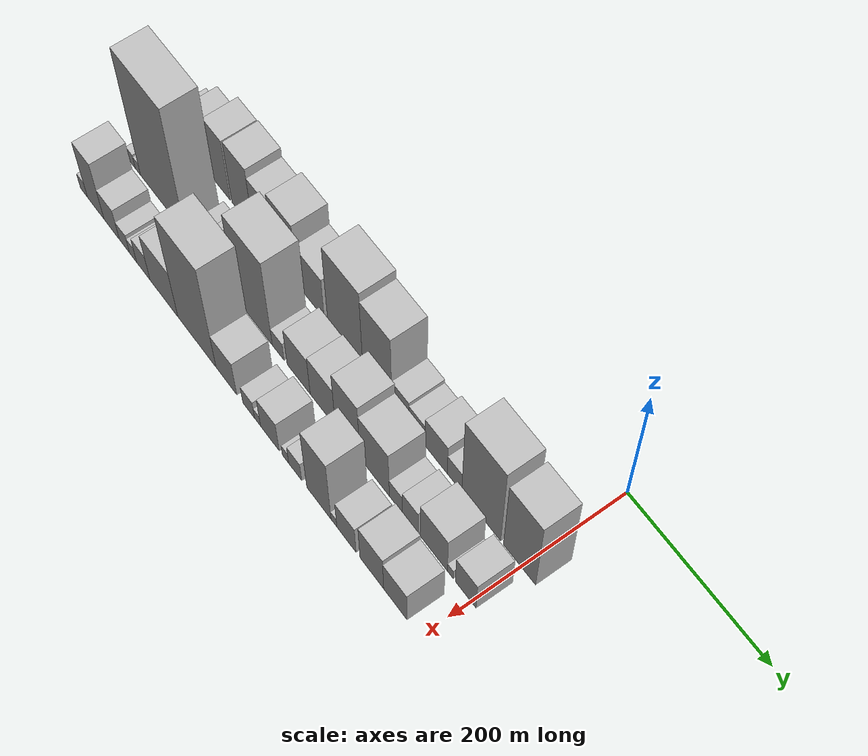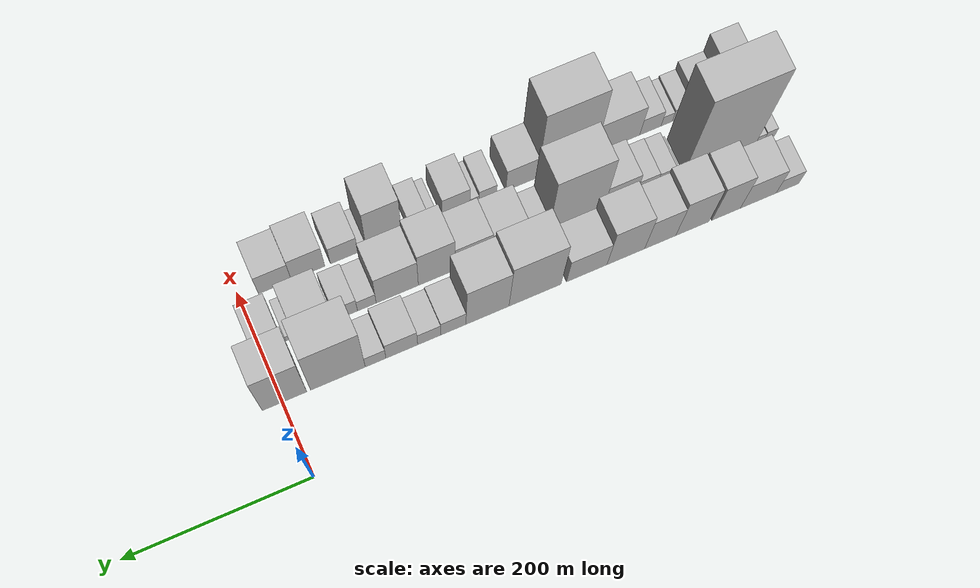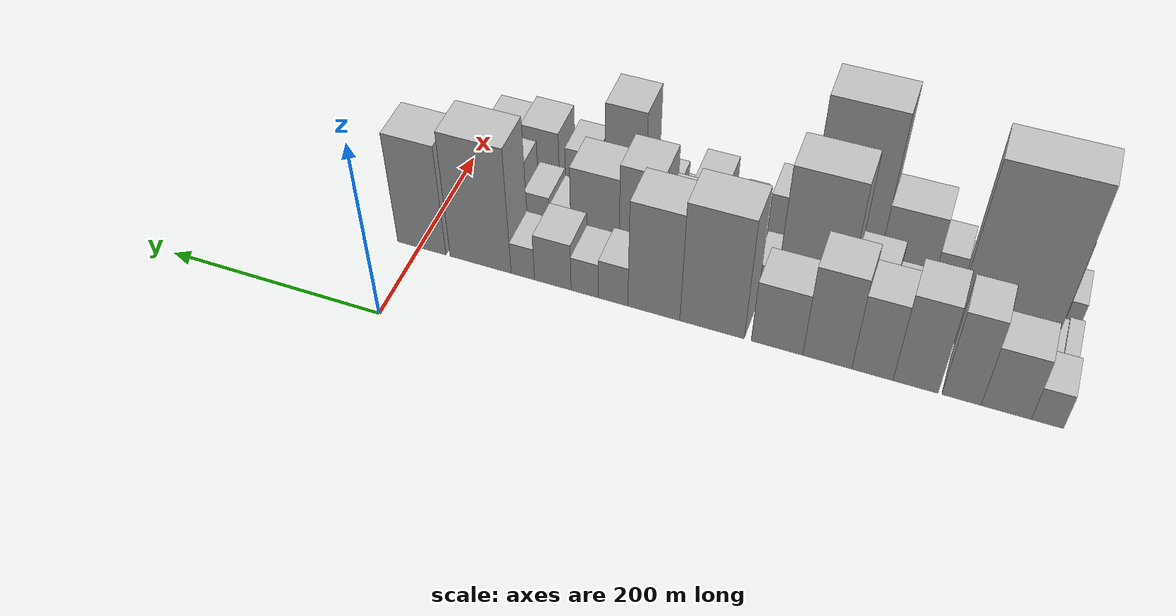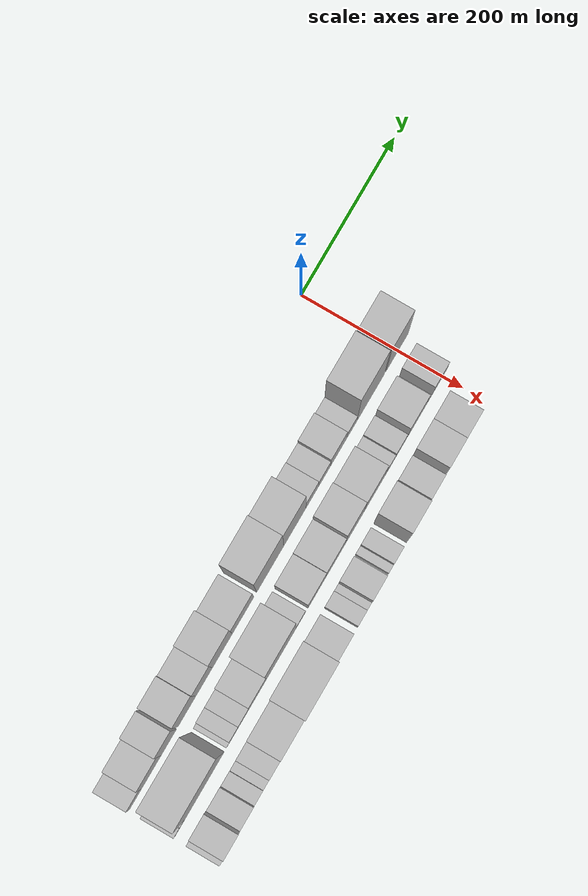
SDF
<sdf version="1.6">
 <world name="default">
  <model name="building_1">
   <static>1</static>
   <pose>100.0000 -547.4474 0 0.000000 0.000000 0.000000</pose>
   <link name="link">
    <pose>0 0 21.00 0 0 0</pose>
    <collision name="collision"><geometry><box><size>40.0000 25.1052 42.0000</size></box></geometry></collision>
    <visual name="visual">
     <cast_shadows>0</cast_shadows>
     <geometry><box><size>40.0000 25.1052 42.0000</size></box></geometry>
     <material>
      <script>
       <uri>model://HANNAS_wall/materials/scripts</uri>
       <uri>model://HANNAS_wall/materials/textures</uri>
       <name>vrc/HANNAS_wall</name>
      </script>
     </material>
    </visual>
   </link>
  </model>
  <model name="building_2">
   <static>1</static>
   <pose>100.0000 -514.9876 0 0.000000 0.000000 0.000000</pose>
   <link name="link">
    <pose>0 0 37.50 0 0 0</pose>
    <collision name="collision"><geometry><box><size>40.0000 39.8145 75.0000</size></box></geometry></collision>
    <visual name="visual">
     <cast_shadows>0</cast_shadows>
     <geometry><box><size>40.0000 39.8145 75.0000</size></box></geometry>
     <material>
      <script>
       <uri>model://HANNAS_wall/materials/scripts</uri>
       <uri>model://HANNAS_wall/materials/textures</uri>
       <name>vrc/HANNAS_wall</name>
      </script>
     </material>
    </visual>
   </link>
  </model>
  <model name="building_3">
   <static>1</static>
   <pose>100.0000 -479.2793 0 0.000000 0.000000 0.000000</pose>
   <link name="link">
    <pose>0 0 52.50 0 0 0</pose>
    <collision name="collision"><geometry><box><size>40.0000 31.6019 105.0000</size></box></geometry></collision>
    <visual name="visual">
     <cast_shadows>0</cast_shadows>
     <geometry><box><size>40.0000 31.6019 105.0000</size></box></geometry>
     <material>
      <script>
       <uri>model://HANNAS_wall/materials/scripts</uri>
       <uri>model://HANNAS_wall/materials/textures</uri>
       <name>vrc/HANNAS_wall</name>
      </script>
     </material>
    </visual>
   </link>
  </model>
  <model name="building_4">
   <static>1</static>
   <pose>100.0000 -442.0592 0 0.000000 0.000000 0.000000</pose>
   <link name="link">
    <pose>0 0 54.00 0 0 0</pose>
    <collision name="collision"><geometry><box><size>40.0000 36.8384 108.0000</size></box></geometry></collision>
    <visual name="visual">
     <cast_shadows>0</cast_shadows>
     <geometry><box><size>40.0000 36.8384 108.0000</size></box></geometry>
     <material>
      <script>
       <uri>model://HANNAS_wall/materials/scripts</uri>
       <uri>model://HANNAS_wall/materials/textures</uri>
       <name>vrc/HANNAS_wall</name>
      </script>
     </material>
    </visual>
   </link>
  </model>
  <model name="building_5">
   <static>1</static>
   <pose>100.0000 -406.5390 0 0.000000 0.000000 0.000000</pose>
   <link name="link">
    <pose>0 0 46.50 0 0 0</pose>
    <collision name="collision"><geometry><box><size>40.0000 34.2020 93.0000</size></box></geometry></collision>
    <visual name="visual">
     <cast_shadows>0</cast_shadows>
     <geometry><box><size>40.0000 34.2020 93.0000</size></box></geometry>
     <material>
      <script>
       <uri>model://HANNAS_wall/materials/scripts</uri>
       <uri>model://HANNAS_wall/materials/textures</uri>
       <name>vrc/HANNAS_wall</name>
      </script>
     </material>
    </visual>
   </link>
  </model>
  <model name="building_6">
   <static>1</static>
   <pose>100.0000 -368.8271 0 0.000000 0.000000 0.000000</pose>
   <link name="link">
    <pose>0 0 55.50 0 0 0</pose>
    <collision name="collision"><geometry><box><size>40.0000 41.2217 111.0000</size></box></geometry></collision>
    <visual name="visual">
     <cast_shadows>0</cast_shadows>
     <geometry><box><size>40.0000 41.2217 111.0000</size></box></geometry>
     <material>
      <script>
       <uri>model://HANNAS_wall/materials/scripts</uri>
       <uri>model://HANNAS_wall/materials/textures</uri>
       <name>vrc/HANNAS_wall</name>
      </script>
     </material>
    </visual>
   </link>
  </model>
  <model name="building_7">
   <static>1</static>
   <pose>100.0000 -326.1968 0 0.000000 0.000000 0.000000</pose>
   <link name="link">
    <pose>0 0 37.50 0 0 0</pose>
    <collision name="collision"><geometry><box><size>40.0000 44.0390 75.0000</size></box></geometry></collision>
    <visual name="visual">
     <cast_shadows>0</cast_shadows>
     <geometry><box><size>40.0000 44.0390 75.0000</size></box></geometry>
     <material>
      <script>
       <uri>model://HANNAS_wall/materials/scripts</uri>
       <uri>model://HANNAS_wall/materials/textures</uri>
       <name>vrc/HANNAS_wall</name>
      </script>
     </material>
    </visual>
   </link>
  </model>
  <model name="building_8">
   <static>1</static>
   <pose>100.0000 -269.9359 0 0.000000 0.000000 0.000000</pose>
   <link name="link">
    <pose>0 0 72.00 0 0 0</pose>
    <collision name="collision"><geometry><box><size>40.0000 56.4827 144.0000</size></box></geometry></collision>
    <visual name="visual">
     <cast_shadows>0</cast_shadows>
     <geometry><box><size>40.0000 56.4827 144.0000</size></box></geometry>
     <material>
      <script>
       <uri>model://HANNAS_wall/materials/scripts</uri>
       <uri>model://HANNAS_wall/materials/textures</uri>
       <name>vrc/HANNAS_wall</name>
      </script>
     </material>
    </visual>
   </link>
  </model>
  <model name="building_9">
   <static>1</static>
   <pose>100.0000 -218.4961 0 0.000000 0.000000 0.000000</pose>
   <link name="link">
    <pose>0 0 64.50 0 0 0</pose>
    <collision name="collision"><geometry><box><size>40.0000 46.3969 129.0000</size></box></geometry></collision>
    <visual name="visual">
     <cast_shadows>0</cast_shadows>
     <geometry><box><size>40.0000 46.3969 129.0000</size></box></geometry>
     <material>
      <script>
       <uri>model://HANNAS_wall/materials/scripts</uri>
       <uri>model://HANNAS_wall/materials/textures</uri>
       <name>vrc/HANNAS_wall</name>
      </script>
     </material>
    </visual>
   </link>
  </model>
  <model name="building_10">
   <static>1</static>
   <pose>100.0000 -181.8941 0 0.000000 0.000000 0.000000</pose>
   <link name="link">
    <pose>0 0 24.00 0 0 0</pose>
    <collision name="collision"><geometry><box><size>40.0000 26.8072 48.0000</size></box></geometry></collision>
    <visual name="visual">
     <cast_shadows>0</cast_shadows>
     <geometry><box><size>40.0000 26.8072 48.0000</size></box></geometry>
     <material>
      <script>
       <uri>model://HANNAS_wall/materials/scripts</uri>
       <uri>model://HANNAS_wall/materials/textures</uri>
       <name>vrc/HANNAS_wall</name>
      </script>
     </material>
    </visual>
   </link>
  </model>
  <model name="building_11">
   <static>1</static>
   <pose>100.0000 -156.0569 0 0.000000 0.000000 0.000000</pose>
   <link name="link">
    <pose>0 0 21.00 0 0 0</pose>
    <collision name="collision"><geometry><box><size>40.0000 24.8672 42.0000</size></box></geometry></collision>
    <visual name="visual">
     <cast_shadows>0</cast_shadows>
     <geometry><box><size>40.0000 24.8672 42.0000</size></box></geometry>
     <material>
      <script>
       <uri>model://HANNAS_wall/materials/scripts</uri>
       <uri>model://HANNAS_wall/materials/textures</uri>
       <name>vrc/HANNAS_wall</name>
      </script>
     </material>
    </visual>
   </link>
  </model>
  <model name="building_12">
   <static>1</static>
   <pose>100.0000 -126.6801 0 0.000000 0.000000 0.000000</pose>
   <link name="link">
    <pose>0 0 28.50 0 0 0</pose>
    <collision name="collision"><geometry><box><size>40.0000 33.8864 57.0000</size></box></geometry></collision>
    <visual name="visual">
     <cast_shadows>0</cast_shadows>
     <geometry><box><size>40.0000 33.8864 57.0000</size></box></geometry>
     <material>
      <script>
       <uri>model://HANNAS_wall/materials/scripts</uri>
       <uri>model://HANNAS_wall/materials/textures</uri>
       <name>vrc/HANNAS_wall</name>
      </script>
     </material>
    </visual>
   </link>
  </model>
  <model name="building_13">
   <static>1</static>
   <pose>100.0000 -98.7835 0 0.000000 0.000000 0.000000</pose>
   <link name="link">
    <pose>0 0 19.50 0 0 0</pose>
    <collision name="collision"><geometry><box><size>40.0000 21.9067 39.0000</size></box></geometry></collision>
    <visual name="visual">
     <cast_shadows>0</cast_shadows>
     <geometry><box><size>40.0000 21.9067 39.0000</size></box></geometry>
     <material>
      <script>
       <uri>model://HANNAS_wall/materials/scripts</uri>
       <uri>model://HANNAS_wall/materials/textures</uri>
       <name>vrc/HANNAS_wall</name>
      </script>
     </material>
    </visual>
   </link>
  </model>
  <model name="building_14">
   <static>1</static>
   <pose>100.0000 -58.8187 0 0.000000 0.000000 0.000000</pose>
   <link name="link">
    <pose>0 0 75.00 0 0 0</pose>
    <collision name="collision"><geometry><box><size>40.0000 58.0228 150.0000</size></box></geometry></collision>
    <visual name="visual">
     <cast_shadows>0</cast_shadows>
     <geometry><box><size>40.0000 58.0228 150.0000</size></box></geometry>
     <material>
      <script>
       <uri>model://HANNAS_wall/materials/scripts</uri>
       <uri>model://HANNAS_wall/materials/textures</uri>
       <name>vrc/HANNAS_wall</name>
      </script>
     </material>
    </visual>
   </link>
  </model>
  <model name="building_15">
   <static>1</static>
   <pose>100.0000 -2.3847 0 0.000000 0.000000 0.000000</pose>
   <link name="link">
    <pose>0 0 66.00 0 0 0</pose>
    <collision name="collision"><geometry><box><size>40.0000 46.8452 132.0000</size></box></geometry></collision>
    <visual name="visual">
     <cast_shadows>0</cast_shadows>
     <geometry><box><size>40.0000 46.8452 132.0000</size></box></geometry>
     <material>
      <script>
       <uri>model://HANNAS_wall/materials/scripts</uri>
       <uri>model://HANNAS_wall/materials/textures</uri>
       <name>vrc/HANNAS_wall</name>
      </script>
     </material>
    </visual>
   </link>
  </model>
  <model name="building_35">
   <static>1</static>
   <pose>155.0000 -554.0229 0 0.000000 0.000000 0.000000</pose>
   <link name="link">
    <pose>0 0 12.00 0 0 0</pose>
    <collision name="collision"><geometry><box><size>40.0000 11.9541 24.0000</size></box></geometry></collision>
    <visual name="visual">
     <cast_shadows>0</cast_shadows>
     <geometry><box><size>40.0000 11.9541 24.0000</size></box></geometry>
     <material>
      <script>
       <uri>model://HANNAS_wall/materials/scripts</uri>
       <uri>model://HANNAS_wall/materials/textures</uri>
       <name>vrc/HANNAS_wall</name>
      </script>
     </material>
    </visual>
   </link>
  </model>
  <model name="building_36">
   <static>1</static>
   <pose>155.0000 -543.2162 0 0.000000 0.000000 0.000000</pose>
   <link name="link">
    <pose>0 0 10.50 0 0 0</pose>
    <collision name="collision"><geometry><box><size>40.0000 9.6593 21.0000</size></box></geometry></collision>
    <visual name="visual">
     <cast_shadows>0</cast_shadows>
     <geometry><box><size>40.0000 9.6593 21.0000</size></box></geometry>
     <material>
      <script>
       <uri>model://HANNAS_wall/materials/scripts</uri>
       <uri>model://HANNAS_wall/materials/textures</uri>
       <name>vrc/HANNAS_wall</name>
      </script>
     </material>
    </visual>
   </link>
  </model>
  <model name="building_37">
   <static>1</static>
   <pose>155.0000 -498.4545 0 0.000000 0.000000 0.000000</pose>
   <link name="link">
    <pose>0 0 106.50 0 0 0</pose>
    <collision name="collision"><geometry><box><size>40.0000 79.8641 213.0000</size></box></geometry></collision>
    <visual name="visual">
     <cast_shadows>0</cast_shadows>
     <geometry><box><size>40.0000 79.8641 213.0000</size></box></geometry>
     <material>
      <script>
       <uri>model://HANNAS_wall/materials/scripts</uri>
       <uri>model://HANNAS_wall/materials/textures</uri>
       <name>vrc/HANNAS_wall</name>
      </script>
     </material>
    </visual>
   </link>
  </model>
  <model name="building_38">
   <static>1</static>
   <pose>155.0000 -450.0620 0 0.000000 0.000000 0.000000</pose>
   <link name="link">
    <pose>0 0 7.50 0 0 0</pose>
    <collision name="collision"><geometry><box><size>40.0000 6.9209 15.0000</size></box></geometry></collision>
    <visual name="visual">
     <cast_shadows>0</cast_shadows>
     <geometry><box><size>40.0000 6.9209 15.0000</size></box></geometry>
     <material>
      <script>
       <uri>model://HANNAS_wall/materials/scripts</uri>
       <uri>model://HANNAS_wall/materials/textures</uri>
       <name>vrc/HANNAS_wall</name>
      </script>
     </material>
    </visual>
   </link>
  </model>
  <model name="building_39">
   <static>1</static>
   <pose>155.0000 -437.4602 0 0.000000 0.000000 0.000000</pose>
   <link name="link">
    <pose>0 0 18.00 0 0 0</pose>
    <collision name="collision"><geometry><box><size>40.0000 18.2828 36.0000</size></box></geometry></collision>
    <visual name="visual">
     <cast_shadows>0</cast_shadows>
     <geometry><box><size>40.0000 18.2828 36.0000</size></box></geometry>
     <material>
      <script>
       <uri>model://HANNAS_wall/materials/scripts</uri>
       <uri>model://HANNAS_wall/materials/textures</uri>
       <name>vrc/HANNAS_wall</name>
      </script>
     </material>
    </visual>
   </link>
  </model>
  <model name="building_40">
   <static>1</static>
   <pose>155.0000 -417.2199 0 0.000000 0.000000 0.000000</pose>
   <link name="link">
    <pose>0 0 19.50 0 0 0</pose>
    <collision name="collision"><geometry><box><size>40.0000 22.1979 39.0000</size></box></geometry></collision>
    <visual name="visual">
     <cast_shadows>0</cast_shadows>
     <geometry><box><size>40.0000 22.1979 39.0000</size></box></geometry>
     <material>
      <script>
       <uri>model://HANNAS_wall/materials/scripts</uri>
       <uri>model://HANNAS_wall/materials/textures</uri>
       <name>vrc/HANNAS_wall</name>
      </script>
     </material>
    </visual>
   </link>
  </model>
  <model name="building_41">
   <static>1</static>
   <pose>155.0000 -388.3180 0 0.000000 0.000000 0.000000</pose>
   <link name="link">
    <pose>0 0 31.50 0 0 0</pose>
    <collision name="collision"><geometry><box><size>40.0000 35.6058 63.0000</size></box></geometry></collision>
    <visual name="visual">
     <cast_shadows>0</cast_shadows>
     <geometry><box><size>40.0000 35.6058 63.0000</size></box></geometry>
     <material>
      <script>
       <uri>model://HANNAS_wall/materials/scripts</uri>
       <uri>model://HANNAS_wall/materials/textures</uri>
       <name>vrc/HANNAS_wall</name>
      </script>
     </material>
    </visual>
   </link>
  </model>
  <model name="building_42">
   <static>1</static>
   <pose>155.0000 -340.1591 0 0.000000 0.000000 0.000000</pose>
   <link name="link">
    <pose>0 0 78.00 0 0 0</pose>
    <collision name="collision"><geometry><box><size>40.0000 60.7120 156.0000</size></box></geometry></collision>
    <visual name="visual">
     <cast_shadows>0</cast_shadows>
     <geometry><box><size>40.0000 60.7120 156.0000</size></box></geometry>
     <material>
      <script>
       <uri>model://HANNAS_wall/materials/scripts</uri>
       <uri>model://HANNAS_wall/materials/textures</uri>
       <name>vrc/HANNAS_wall</name>
      </script>
     </material>
    </visual>
   </link>
  </model>
  <model name="building_43">
   <static>1</static>
   <pose>155.0000 -300.0281 0 0.000000 0.000000 0.000000</pose>
   <link name="link">
    <pose>0 0 16.50 0 0 0</pose>
    <collision name="collision"><geometry><box><size>40.0000 19.5500 33.0000</size></box></geometry></collision>
    <visual name="visual">
     <cast_shadows>0</cast_shadows>
     <geometry><box><size>40.0000 19.5500 33.0000</size></box></geometry>
     <material>
      <script>
       <uri>model://HANNAS_wall/materials/scripts</uri>
       <uri>model://HANNAS_wall/materials/textures</uri>
       <name>vrc/HANNAS_wall</name>
      </script>
     </material>
    </visual>
   </link>
  </model>
  <model name="building_44">
   <static>1</static>
   <pose>155.0000 -266.4066 0 0.000000 0.000000 0.000000</pose>
   <link name="link">
    <pose>0 0 34.50 0 0 0</pose>
    <collision name="collision"><geometry><box><size>40.0000 37.6930 69.0000</size></box></geometry></collision>
    <visual name="visual">
     <cast_shadows>0</cast_shadows>
     <geometry><box><size>40.0000 37.6930 69.0000</size></box></geometry>
     <material>
      <script>
       <uri>model://HANNAS_wall/materials/scripts</uri>
       <uri>model://HANNAS_wall/materials/textures</uri>
       <name>vrc/HANNAS_wall</name>
      </script>
     </material>
    </visual>
   </link>
  </model>
  <model name="building_45">
   <static>1</static>
   <pose>155.0000 -227.3587 0 0.000000 0.000000 0.000000</pose>
   <link name="link">
    <pose>0 0 37.50 0 0 0</pose>
    <collision name="collision"><geometry><box><size>40.0000 40.4029 75.0000</size></box></geometry></collision>
    <visual name="visual">
     <cast_shadows>0</cast_shadows>
     <geometry><box><size>40.0000 40.4029 75.0000</size></box></geometry>
     <material>
      <script>
       <uri>model://HANNAS_wall/materials/scripts</uri>
       <uri>model://HANNAS_wall/materials/textures</uri>
       <name>vrc/HANNAS_wall</name>
      </script>
     </material>
    </visual>
   </link>
  </model>
  <model name="building_46">
   <static>1</static>
   <pose>155.0000 -187.5203 0 0.000000 0.000000 0.000000</pose>
   <link name="link">
    <pose>0 0 54.00 0 0 0</pose>
    <collision name="collision"><geometry><box><size>40.0000 39.2738 108.0000</size></box></geometry></collision>
    <visual name="visual">
     <cast_shadows>0</cast_shadows>
     <geometry><box><size>40.0000 39.2738 108.0000</size></box></geometry>
     <material>
      <script>
       <uri>model://HANNAS_wall/materials/scripts</uri>
       <uri>model://HANNAS_wall/materials/textures</uri>
       <name>vrc/HANNAS_wall</name>
      </script>
     </material>
    </visual>
   </link>
  </model>
  <model name="building_47">
   <static>1</static>
   <pose>155.0000 -145.2305 0 0.000000 0.000000 0.000000</pose>
   <link name="link">
    <pose>0 0 45.00 0 0 0</pose>
    <collision name="collision"><geometry><box><size>40.0000 45.3057 90.0000</size></box></geometry></collision>
    <visual name="visual">
     <cast_shadows>0</cast_shadows>
     <geometry><box><size>40.0000 45.3057 90.0000</size></box></geometry>
     <material>
      <script>
       <uri>model://HANNAS_wall/materials/scripts</uri>
       <uri>model://HANNAS_wall/materials/textures</uri>
       <name>vrc/HANNAS_wall</name>
      </script>
     </material>
    </visual>
   </link>
  </model>
  <model name="building_48">
   <static>1</static>
   <pose>155.0000 -112.5735 0 0.000000 0.000000 0.000000</pose>
   <link name="link">
    <pose>0 0 18.00 0 0 0</pose>
    <collision name="collision"><geometry><box><size>40.0000 20.0084 36.0000</size></box></geometry></collision>
    <visual name="visual">
     <cast_shadows>0</cast_shadows>
     <geometry><box><size>40.0000 20.0084 36.0000</size></box></geometry>
     <material>
      <script>
       <uri>model://HANNAS_wall/materials/scripts</uri>
       <uri>model://HANNAS_wall/materials/textures</uri>
       <name>vrc/HANNAS_wall</name>
      </script>
     </material>
    </visual>
   </link>
  </model>
  <model name="building_49">
   <static>1</static>
   <pose>155.0000 -90.6602 0 0.000000 0.000000 0.000000</pose>
   <link name="link">
    <pose>0 0 22.50 0 0 0</pose>
    <collision name="collision"><geometry><box><size>40.0000 23.8183 45.0000</size></box></geometry></collision>
    <visual name="visual">
     <cast_shadows>0</cast_shadows>
     <geometry><box><size>40.0000 23.8183 45.0000</size></box></geometry>
     <material>
      <script>
       <uri>model://HANNAS_wall/materials/scripts</uri>
       <uri>model://HANNAS_wall/materials/textures</uri>
       <name>vrc/HANNAS_wall</name>
      </script>
     </material>
    </visual>
   </link>
  </model>
  <model name="building_50">
   <static>1</static>
   <pose>155.0000 -55.3497 0 0.000000 0.000000 0.000000</pose>
   <link name="link">
    <pose>0 0 34.50 0 0 0</pose>
    <collision name="collision"><geometry><box><size>40.0000 40.8027 69.0000</size></box></geometry></collision>
    <visual name="visual">
     <cast_shadows>0</cast_shadows>
     <geometry><box><size>40.0000 40.8027 69.0000</size></box></geometry>
     <material>
      <script>
       <uri>model://HANNAS_wall/materials/scripts</uri>
       <uri>model://HANNAS_wall/materials/textures</uri>
       <name>vrc/HANNAS_wall</name>
      </script>
     </material>
    </visual>
   </link>
  </model>
  <model name="building_51">
   <static>1</static>
   <pose>155.0000 -30.5072 0 0.000000 0.000000 0.000000</pose>
   <link name="link">
    <pose>0 0 9.00 0 0 0</pose>
    <collision name="collision"><geometry><box><size>40.0000 8.8824 18.0000</size></box></geometry></collision>
    <visual name="visual">
     <cast_shadows>0</cast_shadows>
     <geometry><box><size>40.0000 8.8824 18.0000</size></box></geometry>
     <material>
      <script>
       <uri>model://HANNAS_wall/materials/scripts</uri>
       <uri>model://HANNAS_wall/materials/textures</uri>
       <name>vrc/HANNAS_wall</name>
      </script>
     </material>
    </visual>
   </link>
  </model>
  <model name="building_52">
   <static>1</static>
   <pose>155.0000 -7.8343 0 0.000000 0.000000 0.000000</pose>
   <link name="link">
    <pose>0 0 27.00 0 0 0</pose>
    <collision name="collision"><geometry><box><size>40.0000 30.4632 54.0000</size></box></geometry></collision>
    <visual name="visual">
     <cast_shadows>0</cast_shadows>
     <geometry><box><size>40.0000 30.4632 54.0000</size></box></geometry>
     <material>
      <script>
       <uri>model://HANNAS_wall/materials/scripts</uri>
       <uri>model://HANNAS_wall/materials/textures</uri>
       <name>vrc/HANNAS_wall</name>
      </script>
     </material>
    </visual>
   </link>
  </model>
  <model name="building_71">
   <static>1</static>
   <pose>210.0000 -553.5843 0 0.000000 0.000000 0.000000</pose>
   <link name="link">
    <pose>0 0 13.50 0 0 0</pose>
    <collision name="collision"><geometry><box><size>40.0000 12.8315 27.0000</size></box></geometry></collision>
    <visual name="visual">
     <cast_shadows>0</cast_shadows>
     <geometry><box><size>40.0000 12.8315 27.0000</size></box></geometry>
     <material>
      <script>
       <uri>model://HANNAS_wall/materials/scripts</uri>
       <uri>model://HANNAS_wall/materials/textures</uri>
       <name>vrc/HANNAS_wall</name>
      </script>
     </material>
    </visual>
   </link>
  </model>
  <model name="building_72">
   <static>1</static>
   <pose>210.0000 -532.0828 0 0.000000 0.000000 0.000000</pose>
   <link name="link">
    <pose>0 0 49.50 0 0 0</pose>
    <collision name="collision"><geometry><box><size>40.0000 30.1714 99.0000</size></box></geometry></collision>
    <visual name="visual">
     <cast_shadows>0</cast_shadows>
     <geometry><box><size>40.0000 30.1714 99.0000</size></box></geometry>
     <material>
      <script>
       <uri>model://HANNAS_wall/materials/scripts</uri>
       <uri>model://HANNAS_wall/materials/textures</uri>
       <name>vrc/HANNAS_wall</name>
      </script>
     </material>
    </visual>
   </link>
  </model>
  <model name="building_73">
   <static>1</static>
   <pose>210.0000 -503.1240 0 0.000000 0.000000 0.000000</pose>
   <link name="link">
    <pose>0 0 27.00 0 0 0</pose>
    <collision name="collision"><geometry><box><size>40.0000 27.7464 54.0000</size></box></geometry></collision>
    <visual name="visual">
     <cast_shadows>0</cast_shadows>
     <geometry><box><size>40.0000 27.7464 54.0000</size></box></geometry>
     <material>
      <script>
       <uri>model://HANNAS_wall/materials/scripts</uri>
       <uri>model://HANNAS_wall/materials/textures</uri>
       <name>vrc/HANNAS_wall</name>
      </script>
     </material>
    </visual>
   </link>
  </model>
  <model name="building_74">
   <static>1</static>
   <pose>210.0000 -480.2449 0 0.000000 0.000000 0.000000</pose>
   <link name="link">
    <pose>0 0 16.50 0 0 0</pose>
    <collision name="collision"><geometry><box><size>40.0000 18.0118 33.0000</size></box></geometry></collision>
    <visual name="visual">
     <cast_shadows>0</cast_shadows>
     <geometry><box><size>40.0000 18.0118 33.0000</size></box></geometry>
     <material>
      <script>
       <uri>model://HANNAS_wall/materials/scripts</uri>
       <uri>model://HANNAS_wall/materials/textures</uri>
       <name>vrc/HANNAS_wall</name>
      </script>
     </material>
    </visual>
   </link>
  </model>
  <model name="building_75">
   <static>1</static>
   <pose>210.0000 -464.9283 0 0.000000 0.000000 0.000000</pose>
   <link name="link">
    <pose>0 0 13.50 0 0 0</pose>
    <collision name="collision"><geometry><box><size>40.0000 12.6212 27.0000</size></box></geometry></collision>
    <visual name="visual">
     <cast_shadows>0</cast_shadows>
     <geometry><box><size>40.0000 12.6212 27.0000</size></box></geometry>
     <material>
      <script>
       <uri>model://HANNAS_wall/materials/scripts</uri>
       <uri>model://HANNAS_wall/materials/textures</uri>
       <name>vrc/HANNAS_wall</name>
      </script>
     </material>
    </visual>
   </link>
  </model>
  <model name="building_76">
   <static>1</static>
   <pose>210.0000 -446.7173 0 0.000000 0.000000 0.000000</pose>
   <link name="link">
    <pose>0 0 22.50 0 0 0</pose>
    <collision name="collision"><geometry><box><size>40.0000 23.8009 45.0000</size></box></geometry></collision>
    <visual name="visual">
     <cast_shadows>0</cast_shadows>
     <geometry><box><size>40.0000 23.8009 45.0000</size></box></geometry>
     <material>
      <script>
       <uri>model://HANNAS_wall/materials/scripts</uri>
       <uri>model://HANNAS_wall/materials/textures</uri>
       <name>vrc/HANNAS_wall</name>
      </script>
     </material>
    </visual>
   </link>
  </model>
  <model name="building_77">
   <static>1</static>
   <pose>210.0000 -410.5324 0 0.000000 0.000000 0.000000</pose>
   <link name="link">
    <pose>0 0 42.00 0 0 0</pose>
    <collision name="collision"><geometry><box><size>40.0000 48.5689 84.0000</size></box></geometry></collision>
    <visual name="visual">
     <cast_shadows>0</cast_shadows>
     <geometry><box><size>40.0000 48.5689 84.0000</size></box></geometry>
     <material>
      <script>
       <uri>model://HANNAS_wall/materials/scripts</uri>
       <uri>model://HANNAS_wall/materials/textures</uri>
       <name>vrc/HANNAS_wall</name>
      </script>
     </material>
    </visual>
   </link>
  </model>
  <model name="building_78">
   <static>1</static>
   <pose>210.0000 -353.8823 0 0.000000 0.000000 0.000000</pose>
   <link name="link">
    <pose>0 0 93.00 0 0 0</pose>
    <collision name="collision"><geometry><box><size>40.0000 64.7313 186.0000</size></box></geometry></collision>
    <visual name="visual">
     <cast_shadows>0</cast_shadows>
     <geometry><box><size>40.0000 64.7313 186.0000</size></box></geometry>
     <material>
      <script>
       <uri>model://HANNAS_wall/materials/scripts</uri>
       <uri>model://HANNAS_wall/materials/textures</uri>
       <name>vrc/HANNAS_wall</name>
      </script>
     </material>
    </visual>
   </link>
  </model>
  <model name="building_79">
   <static>1</static>
   <pose>210.0000 -304.1115 0 0.000000 0.000000 0.000000</pose>
   <link name="link">
    <pose>0 0 31.50 0 0 0</pose>
    <collision name="collision"><geometry><box><size>40.0000 34.8103 63.0000</size></box></geometry></collision>
    <visual name="visual">
     <cast_shadows>0</cast_shadows>
     <geometry><box><size>40.0000 34.8103 63.0000</size></box></geometry>
     <material>
      <script>
       <uri>model://HANNAS_wall/materials/scripts</uri>
       <uri>model://HANNAS_wall/materials/textures</uri>
       <name>vrc/HANNAS_wall</name>
      </script>
     </material>
    </visual>
   </link>
  </model>
  <model name="building_80">
   <static>1</static>
   <pose>210.0000 -267.0372 0 0.000000 0.000000 0.000000</pose>
   <link name="link">
    <pose>0 0 16.50 0 0 0</pose>
    <collision name="collision"><geometry><box><size>40.0000 19.3382 33.0000</size></box></geometry></collision>
    <visual name="visual">
     <cast_shadows>0</cast_shadows>
     <geometry><box><size>40.0000 19.3382 33.0000</size></box></geometry>
     <material>
      <script>
       <uri>model://HANNAS_wall/materials/scripts</uri>
       <uri>model://HANNAS_wall/materials/textures</uri>
       <name>vrc/HANNAS_wall</name>
      </script>
     </material>
    </visual>
   </link>
  </model>
  <model name="building_81">
   <static>1</static>
   <pose>210.0000 -252.4096 0 0.000000 0.000000 0.000000</pose>
   <link name="link">
    <pose>0 0 10.50 0 0 0</pose>
    <collision name="collision"><geometry><box><size>40.0000 9.9171 21.0000</size></box></geometry></collision>
    <visual name="visual">
     <cast_shadows>0</cast_shadows>
     <geometry><box><size>40.0000 9.9171 21.0000</size></box></geometry>
     <material>
      <script>
       <uri>model://HANNAS_wall/materials/scripts</uri>
       <uri>model://HANNAS_wall/materials/textures</uri>
       <name>vrc/HANNAS_wall</name>
      </script>
     </material>
    </visual>
   </link>
  </model>
  <model name="building_82">
   <static>1</static>
   <pose>210.0000 -232.3986 0 0.000000 0.000000 0.000000</pose>
   <link name="link">
    <pose>0 0 28.50 0 0 0</pose>
    <collision name="collision"><geometry><box><size>40.0000 30.1050 57.0000</size></box></geometry></collision>
    <visual name="visual">
     <cast_shadows>0</cast_shadows>
     <geometry><box><size>40.0000 30.1050 57.0000</size></box></geometry>
     <material>
      <script>
       <uri>model://HANNAS_wall/materials/scripts</uri>
       <uri>model://HANNAS_wall/materials/textures</uri>
       <name>vrc/HANNAS_wall</name>
      </script>
     </material>
    </visual>
   </link>
  </model>
  <model name="building_83">
   <static>1</static>
   <pose>210.0000 -207.1955 0 0.000000 0.000000 0.000000</pose>
   <link name="link">
    <pose>0 0 10.50 0 0 0</pose>
    <collision name="collision"><geometry><box><size>40.0000 10.3013 21.0000</size></box></geometry></collision>
    <visual name="visual">
     <cast_shadows>0</cast_shadows>
     <geometry><box><size>40.0000 10.3013 21.0000</size></box></geometry>
     <material>
      <script>
       <uri>model://HANNAS_wall/materials/scripts</uri>
       <uri>model://HANNAS_wall/materials/textures</uri>
       <name>vrc/HANNAS_wall</name>
      </script>
     </material>
    </visual>
   </link>
  </model>
  <model name="building_84">
   <static>1</static>
   <pose>210.0000 -191.6601 0 0.000000 0.000000 0.000000</pose>
   <link name="link">
    <pose>0 0 18.00 0 0 0</pose>
    <collision name="collision"><geometry><box><size>40.0000 20.7695 36.0000</size></box></geometry></collision>
    <visual name="visual">
     <cast_shadows>0</cast_shadows>
     <geometry><box><size>40.0000 20.7695 36.0000</size></box></geometry>
     <material>
      <script>
       <uri>model://HANNAS_wall/materials/scripts</uri>
       <uri>model://HANNAS_wall/materials/textures</uri>
       <name>vrc/HANNAS_wall</name>
      </script>
     </material>
    </visual>
   </link>
  </model>
  <model name="building_85">
   <static>1</static>
   <pose>210.0000 -154.1709 0 0.000000 0.000000 0.000000</pose>
   <link name="link">
    <pose>0 0 60.00 0 0 0</pose>
    <collision name="collision"><geometry><box><size>40.0000 38.2089 120.0000</size></box></geometry></collision>
    <visual name="visual">
     <cast_shadows>0</cast_shadows>
     <geometry><box><size>40.0000 38.2089 120.0000</size></box></geometry>
     <material>
      <script>
       <uri>model://HANNAS_wall/materials/scripts</uri>
       <uri>model://HANNAS_wall/materials/textures</uri>
       <name>vrc/HANNAS_wall</name>
      </script>
     </material>
    </visual>
   </link>
  </model>
  <model name="building_86">
   <static>1</static>
   <pose>210.0000 -130.5853 0 0.000000 0.000000 0.000000</pose>
   <link name="link">
    <pose>0 0 9.00 0 0 0</pose>
    <collision name="collision"><geometry><box><size>40.0000 8.9623 18.0000</size></box></geometry></collision>
    <visual name="visual">
     <cast_shadows>0</cast_shadows>
     <geometry><box><size>40.0000 8.9623 18.0000</size></box></geometry>
     <material>
      <script>
       <uri>model://HANNAS_wall/materials/scripts</uri>
       <uri>model://HANNAS_wall/materials/textures</uri>
       <name>vrc/HANNAS_wall</name>
      </script>
     </material>
    </visual>
   </link>
  </model>
  <model name="building_87">
   <static>1</static>
   <pose>210.0000 -111.2607 0 0.000000 0.000000 0.000000</pose>
   <link name="link">
    <pose>0 0 27.00 0 0 0</pose>
    <collision name="collision"><geometry><box><size>40.0000 29.6870 54.0000</size></box></geometry></collision>
    <visual name="visual">
     <cast_shadows>0</cast_shadows>
     <geometry><box><size>40.0000 29.6870 54.0000</size></box></geometry>
     <material>
      <script>
       <uri>model://HANNAS_wall/materials/scripts</uri>
       <uri>model://HANNAS_wall/materials/textures</uri>
       <name>vrc/HANNAS_wall</name>
      </script>
     </material>
    </visual>
   </link>
  </model>
  <model name="building_88">
   <static>1</static>
   <pose>210.0000 -72.4143 0 0.000000 0.000000 0.000000</pose>
   <link name="link">
    <pose>0 0 34.50 0 0 0</pose>
    <collision name="collision"><geometry><box><size>40.0000 36.0057 69.0000</size></box></geometry></collision>
    <visual name="visual">
     <cast_shadows>0</cast_shadows>
     <geometry><box><size>40.0000 36.0057 69.0000</size></box></geometry>
     <material>
      <script>
       <uri>model://HANNAS_wall/materials/scripts</uri>
       <uri>model://HANNAS_wall/materials/textures</uri>
       <name>vrc/HANNAS_wall</name>
      </script>
     </material>
    </visual>
   </link>
  </model>
  <model name="building_89">
   <static>1</static>
   <pose>210.0000 -36.8467 0 0.000000 0.000000 0.000000</pose>
   <link name="link">
    <pose>0 0 30.00 0 0 0</pose>
    <collision name="collision"><geometry><box><size>40.0000 35.1295 60.0000</size></box></geometry></collision>
    <visual name="visual">
     <cast_shadows>0</cast_shadows>
     <geometry><box><size>40.0000 35.1295 60.0000</size></box></geometry>
     <material>
      <script>
       <uri>model://HANNAS_wall/materials/scripts</uri>
       <uri>model://HANNAS_wall/materials/textures</uri>
       <name>vrc/HANNAS_wall</name>
      </script>
     </material>
    </visual>
   </link>
  </model>
 </world>
</sdf>
